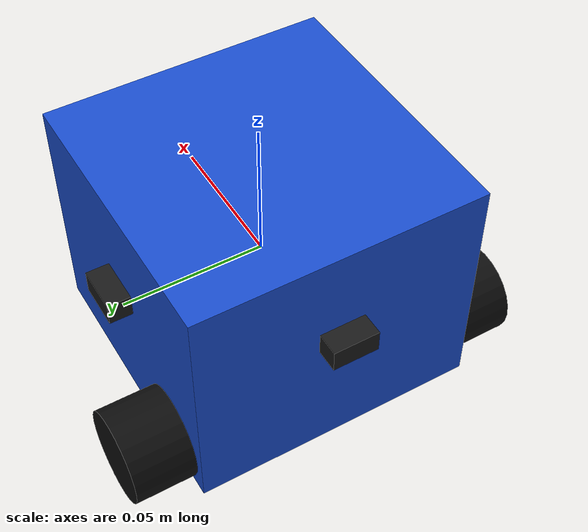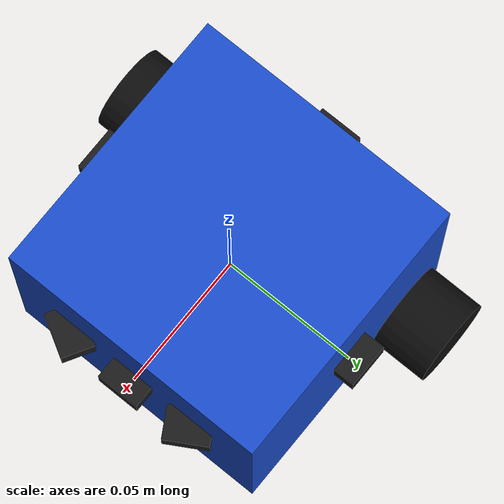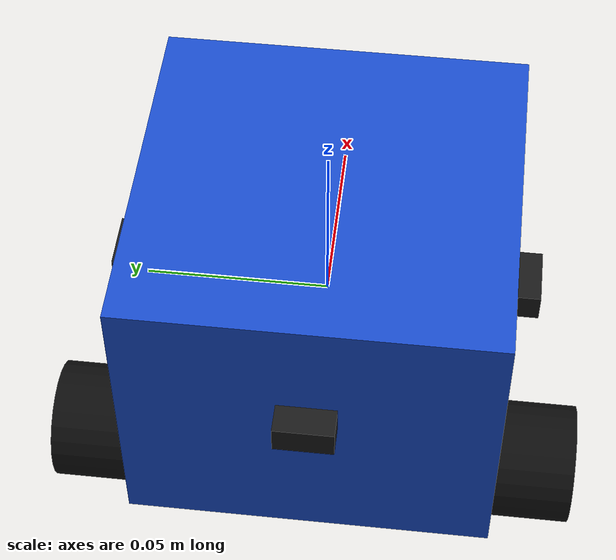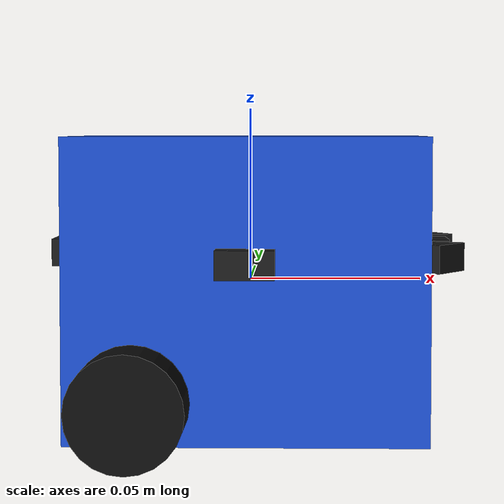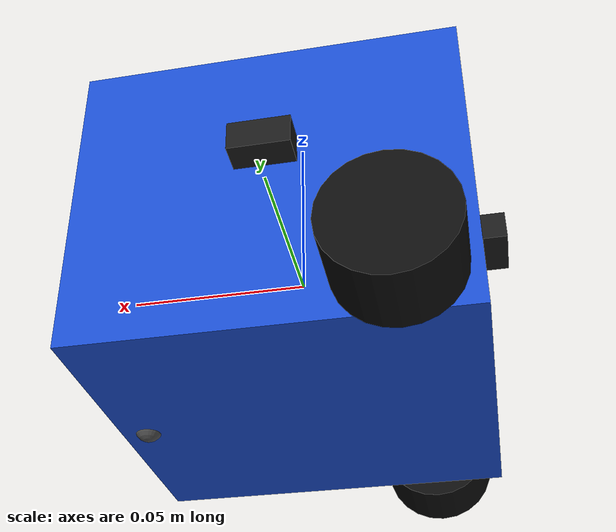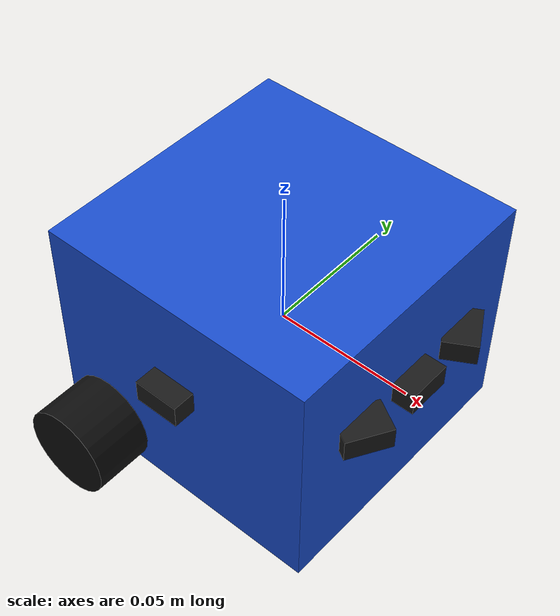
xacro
<?xml version="1.0"?>

<robot name="carro" xmlns:xacro="http://www.ros.org/wiki/xacro">

    <!-- PARÂMETROS GERAIS DO CARRO                       -->

    <!-- Chassi -->
    <xacro:property name="chassis_length" value="0.100"/>
    <xacro:property name="chassis_width"  value="0.100"/>
    <xacro:property name="chassis_height" value="0.084"/>
    <xacro:property name="chassis_mass"   value="0.399"/>

    <!-- Rodas -->
    <xacro:property name="wheel_radius" value="0.016"/>
    <xacro:property name="wheel_width"  value="0.021"/>
    <xacro:property name="wheel_mass"   value="0.050"/>

    <!-- Geometria do veículo -->
    <xacro:property name="wheel_base" value="0.070"/>
    <xacro:property name="track_width" value="0.121"/>

    <!-- Limites mecânicos -->
    <xacro:property name="max_wheel_speed" value="20.0"/>
    <xacro:property name="max_wheel_effort" value="10.0"/>

<!-- MOTOR N20 6 V / 750 RPM / REDUÇÃO 20:1                  -->

<!-- Relação de redução -->
<xacro:property name="motor_gear_ratio" value="20.0"/>

<!-- Encoder -->
<xacro:property name="encoder_ppr_motor" value="7.0"/>
<xacro:property name="encoder_ppr_output" value="140.0"/>

<!-- Velocidade do eixo de saída -->
<xacro:property name="motor_output_rpm" value="750.0"/>

<!-- 750 RPM = 78.5398 rad/s -->
<xacro:property
    name="motor_no_load_speed"
    value="78.5398163397"/>

<!-- Torque máximo no eixo de saída -->
<xacro:property
    name="motor_stall_torque"
    value="0.009"/>

<!-- Tensão nominal -->
<xacro:property
    name="motor_nominal_voltage"
    value="6.0"/>

    <!-- CHASSI                                           -->

    <link name="base_link">

        <visual>
            <geometry>
                <box size="${chassis_length} ${chassis_width} ${chassis_height}"/>
            </geometry>

            <material name="blue">
                <color rgba="0.1 0.3 0.8 1.0"/>
            </material>
        </visual>

        <collision>
            <geometry>
                <box size="${chassis_length} ${chassis_width} ${chassis_height}"/>
            </geometry>
        </collision>

        <inertial>
            <mass value="${chassis_mass}"/>

            <inertia
                ixx="${chassis_mass * (chassis_width*chassis_width + chassis_height*chassis_height) / 12.0}"
                ixy="0.0"
                ixz="0.0"
                iyy="${chassis_mass * (chassis_length*chassis_length + chassis_height*chassis_height) / 12.0}"
                iyz="0.0"
                izz="${chassis_mass * (chassis_length*chassis_length + chassis_width*chassis_width) / 12.0}"/>
        </inertial>

    </link>

<!-- PARÂMETROS MULTI-ROBÔ                            -->

<xacro:arg name="robot_ns" default="carro1"/>

<xacro:arg
    name="controller_config"
    default="$(find carro_sim)/config/controllers_multi.yaml"/>

<xacro:property
    name="robot_ns"
    value="$(arg robot_ns)"/>

<!-- APOIO DIANTEIRO / SKID                            -->

<link name="front_skid_link">

    <visual>
        <geometry>
            <sphere radius="0.004"/>
        </geometry>

        <material name="skid_gray">
            <color rgba="0.3 0.3 0.3 1.0"/>
        </material>
    </visual>

    <collision>
        <geometry>
            <sphere radius="0.004"/>
        </geometry>
    </collision>

    <inertial>
        <mass value="0.001"/>

        <inertia
            ixx="0.0000000064"
            ixy="0"
            ixz="0"
            iyy="0.0000000064"
            iyz="0"
            izz="0.0000000064"/>
    </inertial>

</link>

<joint name="front_skid_joint" type="fixed">

    <parent link="base_link"/>

    <child link="front_skid_link"/>

    <origin
        xyz="0.043 0 -0.040"
        rpy="0 0 0"/>

</joint>

<!-- Baixo atrito para permitir o giro diferencial -->
<gazebo reference="front_skid_link">

    <mu1>0.02</mu1>
    <mu2>0.02</mu2>

</gazebo>

<gazebo reference="base_link">
    <mu1>0.05</mu1>
    <mu2>0.05</mu2>
</gazebo>

    <!-- MACRO PARA CRIAR UMA RODA                        -->
    <xacro:property name="wheel_center_from_bottom" value="0.012"/>
    <xacro:macro name="wheel" params="name x y">

        <link name="${name}_link">

            <visual>
                <origin xyz="0 0 0" rpy="${pi/2} 0 0"/>

                <geometry>
                    <cylinder
                        radius="${wheel_radius}"
                        length="${wheel_width}"/>
                </geometry>

                <material name="black">
                    <color rgba="0.05 0.05 0.05 1.0"/>
                </material>
            </visual>

            <collision>
                <origin xyz="0 0 0" rpy="${pi/2} 0 0"/>

                <geometry>
                    <cylinder
                        radius="${wheel_radius}"
                        length="${wheel_width}"/>
                </geometry>
            </collision>

            <inertial>
                <mass value="${wheel_mass}"/>

                <inertia
                    ixx="${wheel_mass * (3*wheel_radius*wheel_radius + wheel_width*wheel_width)/12.0}"
                    ixy="0"
                    ixz="0"
                    iyy="${wheel_mass * wheel_radius*wheel_radius/2.0}"
                    iyz="0"
                    izz="${wheel_mass * (3*wheel_radius*wheel_radius + wheel_width*wheel_width)/12.0}"/>
            </inertial>

        </link>

        <joint name="${name}_joint" type="continuous">

            <parent link="base_link"/>
            <child link="${name}_link"/>

            <origin
                xyz="${x} ${y} ${-chassis_height/2.0 + wheel_center_from_bottom}"
                rpy="0 0 0"/>

            <axis xyz="0 1 0"/>

            <limit
                effort="${motor_stall_torque}"
                velocity="${motor_no_load_speed}"/>

            <dynamics
                damping="0.00001"
                friction="0.0"/>

        </joint>

    </xacro:macro>

    <!-- DUAS  RODAS                                     -->

    <xacro:wheel
        name="left_wheel"
        x="-0.031"
        y="${track_width/2.0}"/>

    <xacro:wheel
        name="right_wheel"
        x="-0.031"
        y="${-track_width/2.0}"/>
<!-- POSIÇÃO DOS SENSORES                             -->

<!-- Sensor a 50 mm da base inferior do chassi -->
<xacro:property
    name="sensor_z"
    value="${0.050 - chassis_height/2.0}"/>

<!-- 2 mm para fora da superfície do chassi -->
<xacro:property
    name="sensor_front_x"
    value="${chassis_length/2.0 + 0.002}"/>

<xacro:property
    name="sensor_side_y"
    value="${chassis_width/2.0 + 0.002}"/>

<!-- SENSORES                                         -->

<xacro:include filename="sensores_multi.xacro"/>
<!-- TOF FRONTAL - 0 GRAUS                            -->

<xacro:range_sensor

    name="tof_front"

    topic="tof/front/scan"

    x="${sensor_front_x}"

    y="0.0"

    z="${sensor_z}"

    yaw="0.0"

    fov="0.10"

    samples="5"

    min_range="0.04"

    max_range="2.0"

    update_rate="20"

/>

<!-- SHARP FRONTAL ESQUERDO +30 GRAUS                 -->

<xacro:range_sensor

    name="sharp_front_left"

    topic="sharp/front_left/scan"

    x="${sensor_front_x}"

    y="0.025"

    z="${sensor_z}"

    yaw="0.523599"

    fov="0.12"

    samples="5"

    min_range="0.04"

    max_range="0.30"

    update_rate="20"

/>

<!-- SHARP FRONTAL DIREITO -30 GRAUS                  -->

<xacro:range_sensor

    name="sharp_front_right"

    topic="sharp/front_right/scan"

    x="${sensor_front_x}"

    y="-0.025"

    z="${sensor_z}"

    yaw="-0.523599"

    fov="0.12"

    samples="5"

    min_range="0.04"

    max_range="0.30"

    update_rate="20"

/>

<!-- SHARP LATERAL ESQUERDO +90 GRAUS                 -->

<xacro:range_sensor

    name="sharp_left"

    topic="sharp/left/scan"

    x="0.0"

    y="${sensor_side_y}"

    z="${sensor_z}"

    yaw="1.570796"

    fov="0.12"

    samples="5"

    min_range="0.04"

    max_range="0.30"

    update_rate="20"

/>

<!-- SHARP LATERAL DIREITO -90 GRAUS                  -->

<xacro:range_sensor

    name="sharp_right"

    topic="sharp/right/scan"

    x="0.0"

    y="${-sensor_side_y}"

    z="${sensor_z}"

    yaw="-1.570796"

    fov="0.12"

    samples="5"

    min_range="0.04"

    max_range="0.30"

    update_rate="20"

/>

<!-- SHARP TRASEIRO 180 GRAUS                         -->

<xacro:range_sensor

    name="sharp_rear"

    topic="sharp/rear/scan"

    x="${-sensor_front_x}"

    y="0.0"

    z="${sensor_z}"

    yaw="3.141593"

    fov="0.12"

    samples="5"

    min_range="0.04"

    max_range="0.30"

    update_rate="20"

/>

    <!-- ROS 2 CONTROL                                    -->

    <ros2_control name="GazeboSimSystem" type="system">

        <hardware>
            <plugin>gz_ros2_control/GazeboSimSystem</plugin>
        </hardware>

<joint name="left_wheel_joint">

    <command_interface name="effort">
        <param name="min">-0.009</param>
        <param name="max">0.009</param>
    </command_interface>

    <state_interface name="position"/>
    <state_interface name="velocity"/>
    <state_interface name="effort"/>
</joint>

<joint name="right_wheel_joint">

        <command_interface name="effort">
        <param name="min">-0.009</param>
        <param name="max">0.009</param>
        </command_interface>
    <state_interface name="position"/>
    <state_interface name="velocity"/>
    <state_interface name="effort"/>
</joint>

    </ros2_control>

    <!-- GAZEBO + ROS2 CONTROL                            -->

    <gazebo>

    <plugin
        filename="libgz_ros2_control-system.so"
        name="gz_ros2_control::GazeboSimROS2ControlPlugin">

        <parameters>$(arg controller_config)</parameters>

        <ros>

            <namespace>/${robot_ns}</namespace>

            <remapping>
                /robot_description:=/${robot_ns}/robot_description
            </remapping>

        </ros>

    </plugin>

</gazebo>

</robot>

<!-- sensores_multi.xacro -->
<robot xmlns:xacro="http://www.ros.org/wiki/xacro">

    <!-- MACRO GENÉRICO PARA SENSOR DE DISTÂNCIA                  -->

    <xacro:macro
        name="range_sensor"
        params="
            name
            topic
            x
            y
            z
            yaw
            fov
            samples
            min_range
            max_range
            update_rate
        ">

        <!-- LINK DO SENSOR                                       -->

        <link name="${name}_link">

            <!-- Pequena caixa apenas para visualizar o sensor -->
            <visual>

                <geometry>
                    <box size="0.012 0.016 0.008"/>
                </geometry>

                <material name="${name}_material">
                    <color rgba="0.1 0.1 0.1 1.0"/>
                </material>

            </visual>

        </link>

        <!-- JUNTA FIXA                                           -->
        <!--
            O sensor fica preso ao base_link.
        -->

        <joint name="${name}_joint" type="fixed">

            <parent link="base_link"/>

            <child link="${name}_link"/>

            <origin
                xyz="${x} ${y} ${z}"
                rpy="0 0 ${yaw}"/>

        </joint>

        <!-- SENSOR NO GAZEBO                                     -->

        <gazebo reference="${name}_link">

            <sensor
                name="${name}_sensor"
                type="gpu_lidar">

                <!--
                    robot_ns vem do carro_multi.xacro.

                    Exemplos gerados:

                    /carro1/tof/front/scan
                    /carro2/tof/front/scan
                -->
                <topic>/${robot_ns}/${topic}</topic>

                <!--
                    Frame usado pela mensagem do sensor.

                    Exemplos:

                    carro1/tof_front_link
                    carro2/tof_front_link
                -->
                <gz_frame_id>${robot_ns}/${name}_link</gz_frame_id>

                <!-- Frequência do sensor -->
                <update_rate>${update_rate}</update_rate>

                <!-- Sensor sempre ligado -->
                <always_on>true</always_on>

                <!--
                    true durante nossos testes para ajudar
                    a enxergar a direção do sensor no Gazebo.
                -->
                <visualize>true</visualize>

                <!-- CONFIGURAÇÃO DO LIDAR                            -->

                <lidar>

                    <scan>

                        <!-- VARREDURA HORIZONTAL                     -->

                        <horizontal>

                            <!-- Quantidade de raios -->
                            <samples>${samples}</samples>

                            <resolution>1</resolution>

                            <min_angle>${-fov/2.0}</min_angle>

                            <max_angle>${fov/2.0}</max_angle>

                        </horizontal>

                    </scan>

                    <!-- ALCANCE                                     -->

                    <range>

                        <min>${min_range}</min>

                        <max>${max_range}</max>

                        <resolution>0.005</resolution>

                    </range>

                </lidar>

            </sensor>

        </gazebo>

    </xacro:macro>

</robot>
